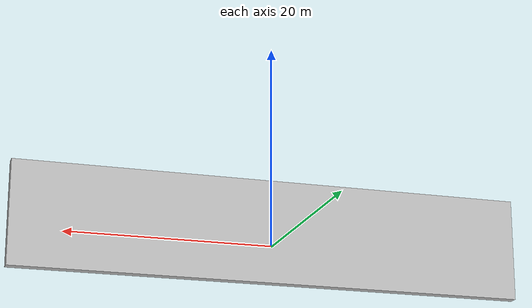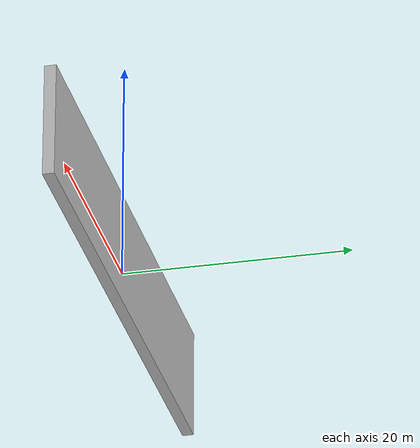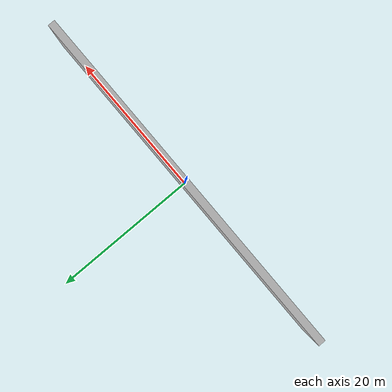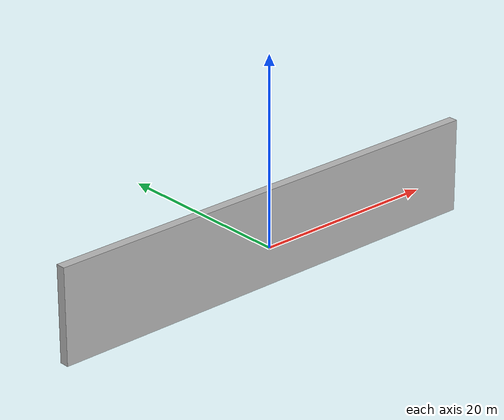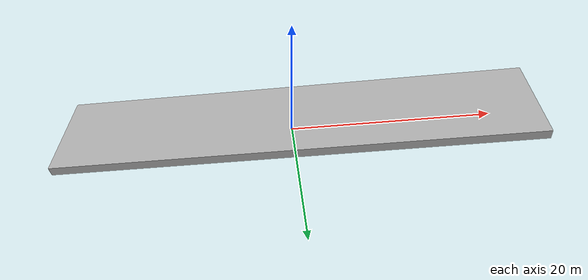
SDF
<?xml version="1.0" ?>
<sdf version="1.5">
  <model name="color_wall">
    <static>true</static>
    <link name="link">
      <pose>0 0 1.4 0 0 0</pose>
      <collision name="collision">
        <geometry>
          <box>
            <size>50 1 10</size>
          </box>
        </geometry>
      </collision>
      <visual name="visual">
        <cast_shadows>false</cast_shadows>
        <geometry>
          <box>
            <size>50 1 10</size>
          </box>
        </geometry>
        <material>
          <script>
            <uri>model://color_wall/materials/scripts</uri>
            <uri>model://color_wall/materials/textures</uri>
            <name>vrc/color_wall</name>
          </script>
        </material>
      </visual>
    </link>
  </model>
</sdf>
